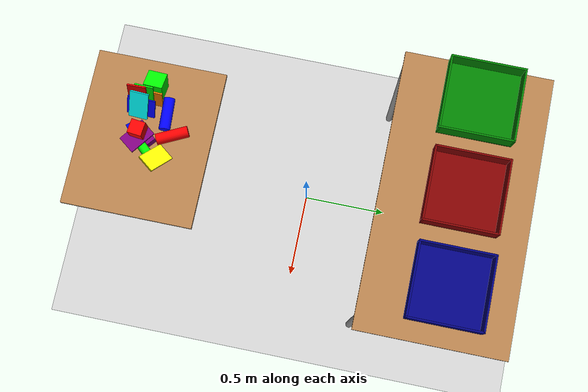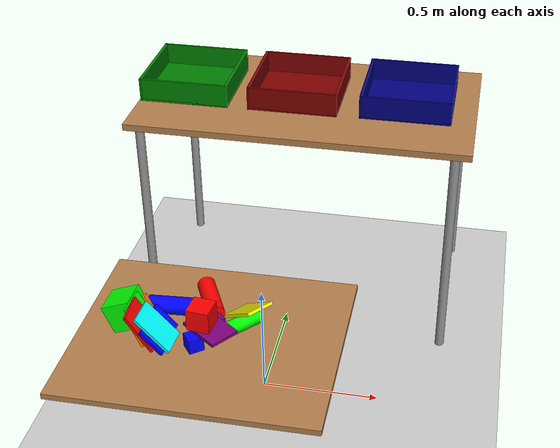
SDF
<sdf version="1.7">
 <world name="default">
  <light name="sun" type="directional">
   <pose>0 0 10 0 -0 0</pose>
   <diffuse>0.8 0.8 0.8 1</diffuse>
   <specular>0.2 0.2 0.2 1</specular>
   <attenuation>
    <range>1000</range>
    <constant>0.9</constant>
    <linear>0.01</linear>
    <quadratic>0.001</quadratic>
   </attenuation>
   <direction>-0.5 0.1 -0.9</direction>
   <spot><inner_angle>0</inner_angle><outer_angle>0</outer_angle><falloff>0</falloff></spot>
  </light>
  <model name="ground_plane">
   <static>1</static>
   <link name="link">
    <collision name="collision">
     <geometry><plane><normal>0 0 1</normal><size>100 100</size></plane></geometry>
     <surface><friction><ode><mu>100</mu><mu2>50</mu2></ode></friction></surface>
    </collision>
    <visual name="visual">
     <cast_shadows>0</cast_shadows>
     <geometry><plane><normal>0 0 1</normal><size>100 100</size></plane></geometry>
     <material>
      <script><uri>file://media/materials/scripts/gazebo.material</uri><name>Gazebo/Grey</name></script>
     </material>
    </visual>
   </link>
  </model>
  <gravity>0 0 -9.8</gravity>
  <magnetic_field>6e-06 2.3e-05 -4.2e-05</magnetic_field>
  <atmosphere type="adiabatic"/>
  <physics type="ode">
   <max_step_size>0.001</max_step_size>
   <real_time_factor>1</real_time_factor>
   <real_time_update_rate>1000</real_time_update_rate>
  </physics>
  <scene><ambient>0.4 0.4 0.4 1</ambient><background>0.7 0.7 0.7 1</background><shadows>1</shadows></scene>
  <audio><device>default</device></audio>
  <spherical_coordinates>
   <surface_model>EARTH_WGS84</surface_model>
   <latitude_deg>0</latitude_deg>
   <longitude_deg>0</longitude_deg>
   <elevation>0</elevation>
   <heading_deg>0</heading_deg>
  </spherical_coordinates>
  <model name="table">
   <static>1</static>
   <link name="link">
    <collision name="surface">
     <pose>0 0 1 0 -0 0</pose>
     <geometry><box><size>1.5 0.8 0.03</size></box></geometry>
     <surface>
      <friction><ode><mu>10</mu><mu2>5</mu2></ode></friction>
      <contact><ode><soft_cfm>0.0001</soft_cfm><soft_erp>0.4</soft_erp><kp>1e+06</kp><kd>10</kd></ode></contact>
     </surface>
    </collision>
    <visual name="visual1">
     <pose>0 0 1 0 -0 0</pose>
     <geometry><box><size>1.5 0.8 0.03</size></box></geometry>
     <material>
      <script><uri>file://media/materials/scripts/gazebo.material</uri><name>Gazebo/Wood</name></script>
     </material>
    </visual>
    <collision name="front_left_leg">
     <pose>0.68 0.38 0.5 0 -0 0</pose>
     <geometry><cylinder><radius>0.02</radius><length>1</length></cylinder></geometry>
    </collision>
    <visual name="front_left_leg">
     <pose>0.68 0.38 0.5 0 -0 0</pose>
     <geometry><cylinder><radius>0.02</radius><length>1</length></cylinder></geometry>
     <material>
      <script><uri>file://media/materials/scripts/gazebo.material</uri><name>Gazebo/Grey</name></script>
     </material>
    </visual>
    <collision name="front_right_leg">
     <pose>0.68 -0.38 0.5 0 -0 0</pose>
     <geometry><cylinder><radius>0.02</radius><length>1</length></cylinder></geometry>
    </collision>
    <visual name="front_right_leg">
     <pose>0.68 -0.38 0.5 0 -0 0</pose>
     <geometry><cylinder><radius>0.02</radius><length>1</length></cylinder></geometry>
     <material>
      <script><uri>file://media/materials/scripts/gazebo.material</uri><name>Gazebo/Grey</name></script>
     </material>
    </visual>
    <collision name="back_right_leg">
     <pose>-0.68 -0.38 0.5 0 -0 0</pose>
     <geometry><cylinder><radius>0.02</radius><length>1</length></cylinder></geometry>
    </collision>
    <visual name="back_right_leg">
     <pose>-0.68 -0.38 0.5 0 -0 0</pose>
     <geometry><cylinder><radius>0.02</radius><length>1</length></cylinder></geometry>
     <material>
      <script><uri>file://media/materials/scripts/gazebo.material</uri><name>Gazebo/Grey</name></script>
     </material>
    </visual>
    <collision name="back_left_leg">
     <pose>-0.68 0.38 0.5 0 -0 0</pose>
     <geometry><cylinder><radius>0.02</radius><length>1</length></cylinder></geometry>
    </collision>
    <visual name="back_left_leg">
     <pose>-0.68 0.38 0.5 0 -0 0</pose>
     <geometry><cylinder><radius>0.02</radius><length>1</length></cylinder></geometry>
     <material>
      <script><uri>file://media/materials/scripts/gazebo.material</uri><name>Gazebo/Grey</name></script>
     </material>
    </visual>
    <inertial>
     <inertia><ixx>1</ixx><ixy>0</ixy><ixz>0</ixz><iyy>1</iyy><iyz>0</iyz><izz>1</izz></inertia>
     <mass>50</mass>
    </inertial>
   </link>
   <pose>0.056083 0.801191 -1.2e-05 0 -0 2.5e-05</pose>
  </model>
  <plugin name="gazebo_link_attacher" filename="libgazebo_link_attacher.so"/>
  <plugin name="gazebo_ros_state" filename="libgazebo_ros_state.so">
   <namespace>/gazebo</namespace>
   <update_rate>100</update_rate>
  </plugin>
  <model name="cube_b">
   <link name="link_2">
    <inertial>
     <mass>2</mass>
     <inertia>
      <ixx>0.00083333</ixx>
      <ixy>0</ixy>
      <ixz>0</ixz>
      <iyy>0.00083333</iyy>
      <iyz>0</iyz>
      <izz>0.00083333</izz>
     </inertia>
    </inertial>
    <visual name="visual">
     <geometry><box><size>0.05 0.05 0.05</size></box></geometry>
     <material>
      <lighting>1</lighting>
      <script><uri>file://media/materials/scripts/gazebo.material</uri><name>Gazebo/Grey</name></script>
      <ambient>0 0 1 1</ambient>
      <diffuse>0 0 1 1</diffuse>
      <specular>0 0 0 1</specular>
      <emissive>0 0 0 1</emissive>
      <shader type="vertex"><normal_map>__default__</normal_map></shader>
     </material>
    </visual>
    <collision name="collision">
     <geometry><box><size>0.05 0.05 0.05</size></box></geometry>
     <surface>
      <friction>
       <ode><mu>0.8</mu><mu2>0.8</mu2><fdir1>0 0 0</fdir1><slip1>0</slip1><slip2>0</slip2></ode>
       <torsional>
        <coefficient>1</coefficient>
        <patch_radius>0</patch_radius>
        <surface_radius>0</surface_radius>
        <use_patch_radius>1</use_patch_radius>
        <ode><slip>0</slip></ode>
       </torsional>
      </friction>
      <bounce><restitution_coefficient>0</restitution_coefficient><threshold>1e+06</threshold></bounce>
      <contact>
       <collide_without_contact>0</collide_without_contact>
       <collide_without_contact_bitmask>1</collide_without_contact_bitmask>
       <collide_bitmask>1</collide_bitmask>
       <ode>
        <soft_cfm>0.0001</soft_cfm>
        <soft_erp>0.4</soft_erp>
        <kp>1e+06</kp>
        <kd>10</kd>
        <max_vel>0.01</max_vel>
        <min_depth>0</min_depth>
       </ode>
      </contact>
     </surface>
    </collision>
   </link>
   <static>0</static>
   <allow_auto_disable>0</allow_auto_disable>
   <pose>0.00929 -0.92489 1.01053 0.001646 0.00382 -2.47516</pose>
  </model>
  <model name="cube_g">
   <link name="link_2">
    <inertial>
     <mass>2</mass>
     <inertia>
      <ixx>0.00333333</ixx>
      <iyy>0.00333333</iyy>
      <izz>0.00333333</izz>
      <ixy>0</ixy>
      <ixz>0</ixz>
      <iyz>0</iyz>
     </inertia>
    </inertial>
    <visual name="visual">
     <geometry><box><size>0.1 0.1 0.1</size></box></geometry>
     <material>
      <lighting>1</lighting>
      <script><uri>file://media/materials/scripts/gazebo.material</uri><name>Gazebo/Grey</name></script>
      <ambient>0 1 0 1</ambient>
      <diffuse>0 1 0 1</diffuse>
      <specular>0 0 0 1</specular>
      <emissive>0 0 0 1</emissive>
      <shader type="vertex"><normal_map>__default__</normal_map></shader>
     </material>
    </visual>
    <collision name="collision">
     <geometry><box><size>0.1 0.1 0.1</size></box></geometry>
     <surface>
      <friction>
       <ode><mu>0.8</mu><mu2>0.8</mu2><fdir1>0 0 0</fdir1><slip1>0</slip1><slip2>0</slip2></ode>
       <torsional>
        <coefficient>1</coefficient>
        <patch_radius>0</patch_radius>
        <surface_radius>0</surface_radius>
        <use_patch_radius>1</use_patch_radius>
        <ode><slip>0</slip></ode>
       </torsional>
      </friction>
      <bounce><restitution_coefficient>0</restitution_coefficient><threshold>1e+06</threshold></bounce>
      <contact>
       <collide_without_contact>0</collide_without_contact>
       <collide_without_contact_bitmask>1</collide_without_contact_bitmask>
       <collide_bitmask>1</collide_bitmask>
       <ode>
        <soft_cfm>0.0001</soft_cfm>
        <soft_erp>0.4</soft_erp>
        <kp>1e+06</kp>
        <kd>10</kd>
        <max_vel>0.01</max_vel>
        <min_depth>0</min_depth>
       </ode>
      </contact>
     </surface>
    </collision>
   </link>
   <static>0</static>
   <allow_auto_disable>0</allow_auto_disable>
   <pose>-0.231826 -0.85174 1.04954 1.95599 0.002577 -1.60221</pose>
  </model>
  <model name="cube_r">
   <link name="link_2">
    <inertial>
     <mass>2</mass>
     <inertia>
      <ixx>0.001875</ixx>
      <ixy>0</ixy>
      <ixz>0</ixz>
      <iyy>0.001875</iyy>
      <iyz>0</iyz>
      <izz>0.001875</izz>
     </inertia>
    </inertial>
    <visual name="visual">
     <geometry><box><size>0.075 0.075 0.075</size></box></geometry>
     <material>
      <lighting>1</lighting>
      <script><uri>file://media/materials/scripts/gazebo.material</uri><name>Gazebo/Grey</name></script>
      <ambient>1 0 0 1</ambient>
      <diffuse>1 0 0 1</diffuse>
      <specular>0 0 0 1</specular>
      <emissive>0 0 0 1</emissive>
      <shader type="vertex"><normal_map>__default__</normal_map></shader>
     </material>
    </visual>
    <collision name="collision">
     <geometry><box><size>0.075 0.075 0.075</size></box></geometry>
     <surface>
      <friction>
       <ode><mu>0.8</mu><mu2>0.8</mu2><fdir1>0 0 0</fdir1><slip1>0</slip1><slip2>0</slip2></ode>
       <torsional>
        <coefficient>1</coefficient>
        <patch_radius>0</patch_radius>
        <surface_radius>0</surface_radius>
        <use_patch_radius>1</use_patch_radius>
        <ode><slip>0</slip></ode>
       </torsional>
      </friction>
      <bounce><restitution_coefficient>0</restitution_coefficient><threshold>1e+06</threshold></bounce>
      <contact>
       <collide_without_contact>0</collide_without_contact>
       <collide_without_contact_bitmask>1</collide_without_contact_bitmask>
       <collide_bitmask>1</collide_bitmask>
       <ode>
        <soft_cfm>0.0001</soft_cfm>
        <soft_erp>0.4</soft_erp>
        <kp>1e+06</kp>
        <kd>10</kd>
        <max_vel>0.01</max_vel>
        <min_depth>0</min_depth>
       </ode>
      </contact>
     </surface>
    </collision>
   </link>
   <static>0</static>
   <allow_auto_disable>0</allow_auto_disable>
   <pose>0.026694 -0.881292 1.08313 0.001745 -0.00395 -0.111271</pose>
  </model>
  <model name="cylinder_r">
   <link name="link_0">
    <inertial>
     <mass>0.2</mass>
     <inertia>
      <ixx>0.0005267</ixx>
      <ixy>0</ixy>
      <ixz>0</ixz>
      <iyy>0.0005267</iyy>
      <iyz>0</iyz>
      <izz>9e-05</izz>
     </inertia>
    </inertial>
    <visual name="visual">
     <geometry><cylinder><radius>0.03</radius><length>0.17</length></cylinder></geometry>
     <material>
      <lighting>1</lighting>
      <script><uri>file://media/materials/scripts/gazebo.material</uri><name>Gazebo/Grey</name></script>
      <ambient>1 0 0 1</ambient>
      <diffuse>1 0 0 1</diffuse>
      <specular>0 0 0 1</specular>
      <emissive>0 0 0 1</emissive>
      <shader type="vertex"><normal_map>__default__</normal_map></shader>
     </material>
    </visual>
    <collision name="collision">
     <geometry><cylinder><radius>0.03</radius><length>0.17</length></cylinder></geometry>
     <surface>
      <friction>
       <ode><mu>0.5</mu><mu2>0.5</mu2><fdir1>0 0 0</fdir1><slip1>0</slip1><slip2>0</slip2></ode>
       <torsional>
        <coefficient>1</coefficient>
        <patch_radius>0</patch_radius>
        <surface_radius>0</surface_radius>
        <use_patch_radius>1</use_patch_radius>
        <ode><slip>0</slip></ode>
       </torsional>
      </friction>
      <bounce><restitution_coefficient>0</restitution_coefficient><threshold>1e+06</threshold></bounce>
      <contact>
       <collide_without_contact>0</collide_without_contact>
       <collide_without_contact_bitmask>1</collide_without_contact_bitmask>
       <collide_bitmask>1</collide_bitmask>
       <ode>
        <soft_cfm>0.0001</soft_cfm>
        <soft_erp>0.4</soft_erp>
        <kp>1e+06</kp>
        <kd>10</kd>
        <max_vel>0.01</max_vel>
        <min_depth>0</min_depth>
       </ode>
      </contact>
     </surface>
    </collision>
   </link>
   <static>0</static>
   <allow_auto_disable>0</allow_auto_disable>
   <pose>0.007788 -0.712459 1.01657 -1.56007 0.290508 -2.67994</pose>
  </model>
  <model name="cylinder_b">
   <link name="link_0">
    <inertial>
     <mass>0.2</mass>
     <inertia>
      <ixx>0.0005267</ixx>
      <ixy>0</ixy>
      <ixz>0</ixz>
      <iyy>0.0005267</iyy>
      <iyz>0</iyz>
      <izz>9e-05</izz>
     </inertia>
    </inertial>
    <visual name="visual">
     <geometry><cylinder><radius>0.03</radius><length>0.17</length></cylinder></geometry>
     <material>
      <lighting>1</lighting>
      <ambient>0 0 1 1</ambient>
      <diffuse>0 0 1 1</diffuse>
      <specular>0.1 0.1 0.1 1</specular>
      <emissive>0 0 0 1</emissive>
      <shader type="vertex"><normal_map>__default__</normal_map></shader>
     </material>
    </visual>
    <collision name="collision">
     <geometry><cylinder><radius>0.03</radius><length>0.17</length></cylinder></geometry>
     <surface>
      <friction>
       <ode><mu>0.4</mu><mu2>0.4</mu2><fdir1>0 0 0</fdir1><slip1>0</slip1><slip2>0</slip2></ode>
       <torsional>
        <coefficient>1</coefficient>
        <patch_radius>0</patch_radius>
        <surface_radius>0</surface_radius>
        <use_patch_radius>1</use_patch_radius>
        <ode><slip>0</slip></ode>
       </torsional>
      </friction>
      <bounce><restitution_coefficient>0</restitution_coefficient><threshold>1e+06</threshold></bounce>
      <contact>
       <collide_without_contact>0</collide_without_contact>
       <collide_without_contact_bitmask>1</collide_without_contact_bitmask>
       <collide_bitmask>1</collide_bitmask>
       <ode>
        <soft_cfm>0.0001</soft_cfm>
        <soft_erp>0.4</soft_erp>
        <kp>1e+06</kp>
        <kd>10</kd>
        <max_vel>0.01</max_vel>
        <min_depth>0</min_depth>
       </ode>
      </contact>
     </surface>
    </collision>
   </link>
   <static>0</static>
   <allow_auto_disable>0</allow_auto_disable>
   <pose>-0.099262 -0.766677 1.01527 -1.57529 -0.349819 1.63632</pose>
  </model>
  <model name="cylinder_g">
   <link name="link_0">
    <inertial>
     <mass>0.2</mass>
     <inertia>
      <ixx>0.0005129</ixx>
      <ixy>0</ixy>
      <ixz>0</ixz>
      <iyy>0.0005129</iyy>
      <iyz>0</iyz>
      <izz>6.25e-05</izz>
     </inertia>
    </inertial>
    <visual name="visual">
     <geometry><cylinder><radius>0.025</radius><length>0.17</length></cylinder></geometry>
     <material>
      <lighting>1</lighting>
      <ambient>0 1 0 1</ambient>
      <diffuse>0 1 0 1</diffuse>
      <specular>0.1 0.1 0.1 1</specular>
      <emissive>0 0 0 1</emissive>
      <shader type="vertex"><normal_map>__default__</normal_map></shader>
     </material>
    </visual>
    <collision name="collision">
     <geometry><cylinder><radius>0.025</radius><length>0.17</length></cylinder></geometry>
     <surface>
      <friction>
       <ode><mu>0.5</mu><mu2>0.5</mu2><fdir1>0 0 0</fdir1><slip1>0</slip1><slip2>0</slip2></ode>
       <torsional>
        <coefficient>1</coefficient>
        <patch_radius>0</patch_radius>
        <surface_radius>0</surface_radius>
        <use_patch_radius>1</use_patch_radius>
        <ode><slip>0</slip></ode>
       </torsional>
      </friction>
      <bounce><restitution_coefficient>0</restitution_coefficient><threshold>1e+06</threshold></bounce>
      <contact>
       <collide_without_contact>0</collide_without_contact>
       <collide_without_contact_bitmask>1</collide_without_contact_bitmask>
       <collide_bitmask>1</collide_bitmask>
       <ode>
        <soft_cfm>0.0001</soft_cfm>
        <soft_erp>0.4</soft_erp>
        <kp>1e+06</kp>
        <kd>10</kd>
        <max_vel>0.01</max_vel>
        <min_depth>0</min_depth>
       </ode>
      </contact>
     </surface>
    </collision>
   </link>
   <static>0</static>
   <allow_auto_disable>0</allow_auto_disable>
   <pose>0.121807 -0.825418 1.0111 -1.55917 -1.26198 -0.737832</pose>
  </model>
  <model name="cuboid_r">
   <link name="link">
    <inertial>
     <mass>2</mass>
     <inertia>
      <ixx>0.001683</ixx>
      <iyy>0.003767</iyy>
      <izz>0.005417</izz>
      <ixy>0</ixy>
      <ixz>0</ixz>
      <iyz>0</iyz>
     </inertia>
    </inertial>
    <visual name="visual">
     <geometry><box><size>0.15 0.1 0.01</size></box></geometry>
     <material><ambient>1 0 0 1</ambient><diffuse>1 0 0 1</diffuse><specular>0.1 0.1 0.1 1</specular></material>
    </visual>
    <collision name="collision">
     <geometry><box><size>0.15 0.1 0.01</size></box></geometry>
     <surface>
      <friction>
       <ode><mu>0.6</mu><mu2>0.6</mu2><fdir1>0 0 0</fdir1><slip1>0</slip1><slip2>0</slip2></ode>
       <torsional>
        <coefficient>1</coefficient>
        <patch_radius>0</patch_radius>
        <surface_radius>0</surface_radius>
        <use_patch_radius>1</use_patch_radius>
        <ode><slip>0</slip></ode>
       </torsional>
      </friction>
      <bounce><restitution_coefficient>0</restitution_coefficient><threshold>1e+06</threshold></bounce>
      <contact>
       <collide_without_contact>0</collide_without_contact>
       <collide_without_contact_bitmask>1</collide_without_contact_bitmask>
       <collide_bitmask>1</collide_bitmask>
       <ode>
        <soft_cfm>0.0001</soft_cfm>
        <soft_erp>0.4</soft_erp>
        <kp>1e+06</kp>
        <kd>10</kd>
        <max_vel>0.01</max_vel>
        <min_depth>0</min_depth>
       </ode>
      </contact>
     </surface>
    </collision>
   </link>
   <static>0</static>
   <allow_auto_disable>0</allow_auto_disable>
   <pose>-0.151797 -0.927421 1.05628 -2.99217 1.05595 0.139549</pose>
  </model>
  <model name="cuboid_g">
   <link name="link">
    <inertial>
     <mass>2</mass>
     <inertia>
      <ixx>0.001683</ixx>
      <iyy>0.003767</iyy>
      <izz>0.005417</izz>
      <ixy>0</ixy>
      <ixz>0</ixz>
      <iyz>0</iyz>
     </inertia>
    </inertial>
    <visual name="visual">
     <geometry><box><size>0.15 0.1 0.01</size></box></geometry>
     <material><ambient>0 1 0 1</ambient><diffuse>0 1 0 1</diffuse><specular>0.1 0.1 0.1 1</specular></material>
    </visual>
    <collision name="collision">
     <geometry><box><size>0.15 0.1 0.01</size></box></geometry>
     <surface>
      <friction>
       <ode><mu>0.6</mu><mu2>0.6</mu2><fdir1>0 0 0</fdir1><slip1>0</slip1><slip2>0</slip2></ode>
       <torsional>
        <coefficient>1</coefficient>
        <patch_radius>0</patch_radius>
        <surface_radius>0</surface_radius>
        <use_patch_radius>1</use_patch_radius>
        <ode><slip>0</slip></ode>
       </torsional>
      </friction>
      <bounce><restitution_coefficient>0</restitution_coefficient><threshold>1e+06</threshold></bounce>
      <contact>
       <collide_without_contact>0</collide_without_contact>
       <collide_without_contact_bitmask>1</collide_without_contact_bitmask>
       <collide_bitmask>1</collide_bitmask>
       <ode>
        <soft_cfm>0.0001</soft_cfm>
        <soft_erp>0.4</soft_erp>
        <kp>1e+06</kp>
        <kd>10</kd>
        <max_vel>0.01</max_vel>
        <min_depth>0</min_depth>
       </ode>
      </contact>
     </surface>
    </collision>
   </link>
   <static>0</static>
   <allow_auto_disable>0</allow_auto_disable>
   <pose>-0.160548 -0.895572 1.05329 -3.12607 1.06276 -0.015265</pose>
  </model>
  <model name="cuboid_b">
   <link name="link">
    <inertial>
     <mass>2</mass>
     <inertia>
      <ixx>0.001683</ixx>
      <iyy>0.003767</iyy>
      <izz>0.005417</izz>
      <ixy>0</ixy>
      <ixz>0</ixz>
      <iyz>0</iyz>
     </inertia>
    </inertial>
    <visual name="visual">
     <geometry><box><size>0.15 0.1 0.01</size></box></geometry>
     <material><ambient>0 0 1 1</ambient><diffuse>0 0 1 1</diffuse><specular>0.1 0.1 0.1 1</specular></material>
    </visual>
    <collision name="collision">
     <geometry><box><size>0.15 0.1 0.01</size></box></geometry>
     <surface>
      <friction>
       <ode><mu>0.6</mu><mu2>0.6</mu2><fdir1>0 0 0</fdir1><slip1>0</slip1><slip2>0</slip2></ode>
       <torsional>
        <coefficient>1</coefficient>
        <patch_radius>0</patch_radius>
        <surface_radius>0</surface_radius>
        <use_patch_radius>1</use_patch_radius>
        <ode><slip>0</slip></ode>
       </torsional>
      </friction>
      <bounce><restitution_coefficient>0</restitution_coefficient><threshold>1e+06</threshold></bounce>
      <contact>
       <collide_without_contact>0</collide_without_contact>
       <collide_without_contact_bitmask>1</collide_without_contact_bitmask>
       <collide_bitmask>1</collide_bitmask>
       <ode>
        <soft_cfm>0.0001</soft_cfm>
        <soft_erp>0.4</soft_erp>
        <kp>1e+06</kp>
        <kd>10</kd>
        <max_vel>0.01</max_vel>
        <min_depth>0</min_depth>
       </ode>
      </contact>
     </surface>
    </collision>
   </link>
   <static>0</static>
   <allow_auto_disable>0</allow_auto_disable>
   <pose>-0.110104 -0.906146 1.0257 2.30314 0.001314 -1.6016</pose>
  </model>
  <model name="cuboid_purple">
   <link name="link">
    <inertial>
     <mass>2</mass>
     <inertia>
      <ixx>0.001683</ixx>
      <iyy>0.003767</iyy>
      <izz>0.005417</izz>
      <ixy>0</ixy>
      <ixz>0</ixz>
      <iyz>0</iyz>
     </inertia>
    </inertial>
    <visual name="visual">
     <geometry><box><size>0.15 0.1 0.01</size></box></geometry>
     <material>
      <ambient>0.5 0 0.5 1</ambient>
      <diffuse>0.5 0 0.5 1</diffuse>
      <specular>0.1 0.1 0.1 1</specular>
     </material>
    </visual>
    <collision name="collision">
     <geometry><box><size>0.15 0.1 0.01</size></box></geometry>
     <surface>
      <friction>
       <ode><mu>0.6</mu><mu2>0.6</mu2><fdir1>0 0 0</fdir1><slip1>0</slip1><slip2>0</slip2></ode>
       <torsional>
        <coefficient>1</coefficient>
        <patch_radius>0</patch_radius>
        <surface_radius>0</surface_radius>
        <use_patch_radius>1</use_patch_radius>
        <ode><slip>0</slip></ode>
       </torsional>
      </friction>
      <bounce><restitution_coefficient>0</restitution_coefficient><threshold>1e+06</threshold></bounce>
      <contact>
       <collide_without_contact>0</collide_without_contact>
       <collide_without_contact_bitmask>1</collide_without_contact_bitmask>
       <collide_bitmask>1</collide_bitmask>
       <ode>
        <soft_cfm>0.0001</soft_cfm>
        <soft_erp>0.4</soft_erp>
        <kp>1e+06</kp>
        <kd>10</kd>
        <max_vel>0.01</max_vel>
        <min_depth>0</min_depth>
       </ode>
      </contact>
     </surface>
    </collision>
   </link>
   <static>0</static>
   <allow_auto_disable>0</allow_auto_disable>
   <pose>0.05383 -0.886104 1.04075 0.003499 -0.002549 -0.647532</pose>
  </model>
  <model name="cuboid_orange">
   <link name="link">
    <inertial>
     <mass>2</mass>
     <inertia>
      <ixx>0.001683</ixx>
      <iyy>0.003767</iyy>
      <izz>0.005417</izz>
      <ixy>0</ixy>
      <ixz>0</ixz>
      <iyz>0</iyz>
     </inertia>
    </inertial>
    <visual name="visual">
     <geometry><box><size>0.15 0.1 0.01</size></box></geometry>
     <material>
      <ambient>1 0.5 0 1</ambient>
      <diffuse>1 0.5 0 1</diffuse>
      <specular>0.1 0.1 0.1 1</specular>
     </material>
    </visual>
    <collision name="collision">
     <geometry><box><size>0.15 0.1 0.01</size></box></geometry>
     <surface>
      <friction>
       <ode><mu>0.6</mu><mu2>0.6</mu2><fdir1>0 0 0</fdir1><slip1>0</slip1><slip2>0</slip2></ode>
       <torsional>
        <coefficient>1</coefficient>
        <patch_radius>0</patch_radius>
        <surface_radius>0</surface_radius>
        <use_patch_radius>1</use_patch_radius>
        <ode><slip>0</slip></ode>
       </torsional>
      </friction>
      <bounce><restitution_coefficient>0</restitution_coefficient><threshold>1e+06</threshold></bounce>
      <contact>
       <collide_without_contact>0</collide_without_contact>
       <collide_without_contact_bitmask>1</collide_without_contact_bitmask>
       <collide_bitmask>1</collide_bitmask>
       <ode>
        <soft_cfm>0.0001</soft_cfm>
        <soft_erp>0.4</soft_erp>
        <kp>1e+06</kp>
        <kd>10</kd>
        <max_vel>0.01</max_vel>
        <min_depth>0</min_depth>
       </ode>
      </contact>
     </surface>
    </collision>
   </link>
   <static>0</static>
   <allow_auto_disable>0</allow_auto_disable>
   <pose>-0.166759 -0.877309 1.03308 1.95902 0.001133 -1.60329</pose>
  </model>
  <model name="cuboid_yellow">
   <link name="link">
    <inertial>
     <mass>2</mass>
     <inertia>
      <ixx>0.001683</ixx>
      <iyy>0.003767</iyy>
      <izz>0.005417</izz>
      <ixy>0</ixy>
      <ixz>0</ixz>
      <iyz>0</iyz>
     </inertia>
    </inertial>
    <visual name="visual">
     <geometry><box><size>0.15 0.1 0.01</size></box></geometry>
     <material><ambient>1 1 0 1</ambient><diffuse>1 1 0 1</diffuse><specular>0.1 0.1 0.1 1</specular></material>
    </visual>
    <collision name="collision">
     <geometry><box><size>0.15 0.1 0.01</size></box></geometry>
     <surface>
      <friction>
       <ode><mu>0.6</mu><mu2>0.6</mu2><fdir1>0 0 0</fdir1><slip1>0</slip1><slip2>0</slip2></ode>
       <torsional>
        <coefficient>1</coefficient>
        <patch_radius>0</patch_radius>
        <surface_radius>0</surface_radius>
        <use_patch_radius>1</use_patch_radius>
        <ode><slip>0</slip></ode>
       </torsional>
      </friction>
      <bounce><restitution_coefficient>0</restitution_coefficient><threshold>1e+06</threshold></bounce>
      <contact>
       <collide_without_contact>0</collide_without_contact>
       <collide_without_contact_bitmask>1</collide_without_contact_bitmask>
       <collide_bitmask>1</collide_bitmask>
       <ode>
        <soft_cfm>0.0001</soft_cfm>
        <soft_erp>0.4</soft_erp>
        <kp>1e+06</kp>
        <kd>10</kd>
        <max_vel>0.01</max_vel>
        <min_depth>0</min_depth>
       </ode>
      </contact>
     </surface>
    </collision>
   </link>
   <static>0</static>
   <allow_auto_disable>0</allow_auto_disable>
   <pose>0.145259 -0.766305 1.03298 3.08838 -0.566318 -0.622581</pose>
  </model>
  <model name="cuboid_cyan">
   <link name="link">
    <inertial>
     <mass>2</mass>
     <inertia>
      <ixx>0.001683</ixx>
      <iyy>0.003767</iyy>
      <izz>0.005417</izz>
      <ixy>0</ixy>
      <ixz>0</ixz>
      <iyz>0</iyz>
     </inertia>
    </inertial>
    <visual name="visual">
     <geometry><box><size>0.15 0.1 0.01</size></box></geometry>
     <material><ambient>0 1 1 1</ambient><diffuse>0 1 1 1</diffuse><specular>0.1 0.1 0.1 1</specular></material>
    </visual>
    <collision name="collision">
     <geometry><box><size>0.15 0.1 0.01</size></box></geometry>
     <surface>
      <friction>
       <ode><mu>0.6</mu><mu2>0.6</mu2><fdir1>0 0 0</fdir1><slip1>0</slip1><slip2>0</slip2></ode>
       <torsional>
        <coefficient>1</coefficient>
        <patch_radius>0</patch_radius>
        <surface_radius>0</surface_radius>
        <use_patch_radius>1</use_patch_radius>
        <ode><slip>0</slip></ode>
       </torsional>
      </friction>
      <bounce><restitution_coefficient>0</restitution_coefficient><threshold>1e+06</threshold></bounce>
      <contact>
       <collide_without_contact>0</collide_without_contact>
       <collide_without_contact_bitmask>1</collide_without_contact_bitmask>
       <collide_bitmask>1</collide_bitmask>
       <ode>
        <soft_cfm>0.0001</soft_cfm>
        <soft_erp>0.4</soft_erp>
        <kp>1e+06</kp>
        <kd>10</kd>
        <max_vel>0.01</max_vel>
        <min_depth>0</min_depth>
       </ode>
      </contact>
     </surface>
    </collision>
   </link>
   <static>0</static>
   <allow_auto_disable>0</allow_auto_disable>
   <pose>-0.111507 -0.916774 1.04345 3.13338 0.812361 -0.047442</pose>
  </model>
  <model name="workspace">
   <link name="link">
    <inertial>
     <mass>100</mass>
     <inertia><ixx>6.02417</ixx><ixy>0</ixy><ixz>0</ixz><iyy>4.08667</iyy><iyz>0</iyz><izz>10.1042</izz></inertia>
    </inertial>
    <visual name="visual">
     <geometry><box><size>0.7 0.85 0.02</size></box></geometry>
     <material>
      <script><name>Gazebo/Wood</name><uri>file://media/materials/scripts/gazebo.material</uri></script>
      <shader type="pixel"/>
     </material>
    </visual>
    <collision name="collision">
     <geometry><box><size>0.7 0.85 0.02</size></box></geometry>
     <surface>
      <friction>
       <ode><mu>100</mu><mu2>50</mu2><fdir1>0 0 0</fdir1><slip1>0</slip1><slip2>0</slip2></ode>
       <torsional>
        <coefficient>1</coefficient>
        <patch_radius>0</patch_radius>
        <surface_radius>0</surface_radius>
        <use_patch_radius>1</use_patch_radius>
        <ode><slip>0</slip></ode>
       </torsional>
      </friction>
      <bounce><restitution_coefficient>0</restitution_coefficient><threshold>1e+06</threshold></bounce>
      <contact>
       <collide_without_contact>0</collide_without_contact>
       <collide_without_contact_bitmask>1</collide_without_contact_bitmask>
       <collide_bitmask>1</collide_bitmask>
       <ode>
        <soft_cfm>0.0001</soft_cfm>
        <soft_erp>0.2</soft_erp>
        <kp>1e+13</kp>
        <kd>10</kd>
        <max_vel>0.01</max_vel>
        <min_depth>0</min_depth>
       </ode>
       <bullet>
        <split_impulse>1</split_impulse>
        <split_impulse_penetration_threshold>-0.01</split_impulse_penetration_threshold>
        <soft_cfm>0</soft_cfm>
        <soft_erp>0.2</soft_erp>
        <kp>1e+13</kp>
        <kd>1</kd>
       </bullet>
      </contact>
     </surface>
    </collision>
   </link>
   <static>1</static>
   <pose>0.0416 -0.859914 0.975746 -0.004154 -0.001127 1.57039</pose>
  </model>
  <model name="tray_red">
   <static>1</static>
   <link name="link">
    <collision name="base_collision">
     <pose>0 0 0.01 0 -0 0</pose>
     <geometry><box><size>0.4 0.4 0.01</size></box></geometry>
     <surface><contact><ode><mu>50</mu><mu2>50</mu2></ode></contact></surface>
    </collision>
    <visual name="base_visual">
     <pose>0 0 0.01 0 -0 0</pose>
     <geometry><box><size>0.4 0.4 0.01</size></box></geometry>
     <material>
      <ambient>1 0 0 1</ambient>
      <diffuse>0.5 0 0 1</diffuse>
      <specular>0 0 0 1</specular>
      <emissive>0 0 0 1</emissive>
      <shininess>100</shininess>
     </material>
    </visual>
    <collision name="front_collision">
     <pose>0 0.195 0.06 0 -0 0</pose>
     <geometry><box><size>0.4 0.01 0.1</size></box></geometry>
    </collision>
    <visual name="front_visual">
     <pose>0 0.195 0.06 0 -0 0</pose>
     <geometry><box><size>0.4 0.01 0.1</size></box></geometry>
     <material>
      <ambient>1 0 0 1</ambient>
      <diffuse>0.5 0 0 1</diffuse>
      <specular>0 0 0 1</specular>
      <emissive>0 0 0 1</emissive>
     </material>
    </visual>
    <collision name="back_collision">
     <pose>0 -0.195 0.06 0 -0 0</pose>
     <geometry><box><size>0.4 0.01 0.1</size></box></geometry>
    </collision>
    <visual name="back_visual">
     <pose>0 -0.195 0.06 0 -0 0</pose>
     <geometry><box><size>0.4 0.01 0.1</size></box></geometry>
     <material>
      <ambient>1 0 0 1</ambient>
      <diffuse>0.5 0 0 1</diffuse>
      <specular>0 0 0 1</specular>
      <emissive>0 0 0 1</emissive>
     </material>
    </visual>
    <collision name="left_collision">
     <pose>0.195 0 0.06 0 -0 0</pose>
     <geometry><box><size>0.01 0.4 0.1</size></box></geometry>
    </collision>
    <visual name="left_visual">
     <pose>0.195 0 0.06 0 -0 0</pose>
     <geometry><box><size>0.01 0.4 0.1</size></box></geometry>
     <material>
      <ambient>1 0 0 1</ambient>
      <diffuse>0.5 0 0 1</diffuse>
      <specular>0 0 0 1</specular>
      <emissive>0 0 0 1</emissive>
     </material>
    </visual>
    <collision name="right_collision">
     <pose>-0.195 0 0.06 0 -0 0</pose>
     <geometry><box><size>0.01 0.4 0.1</size></box></geometry>
    </collision>
    <visual name="right_visual">
     <pose>-0.195 0 0.06 0 -0 0</pose>
     <geometry><box><size>0.01 0.4 0.1</size></box></geometry>
     <material>
      <ambient>1 0 0 1</ambient>
      <diffuse>0.5 0 0 1</diffuse>
      <specular>0 0 0 1</specular>
      <emissive>0 0 0 1</emissive>
     </material>
    </visual>
    <inertial>
     <inertia><ixx>1</ixx><ixy>0</ixy><ixz>0</ixz><iyy>1</iyy><iyz>0</iyz><izz>1</izz></inertia>
     <mass>1</mass>
    </inertial>
   </link>
   <pose>0.003367 0.836815 1.00999 0 -0 0</pose>
  </model>
  <model name="tray_green">
   <static>1</static>
   <link name="link">
    <collision name="base_collision">
     <pose>0 0 0.01 0 -0 0</pose>
     <geometry><box><size>0.4 0.4 0.01</size></box></geometry>
     <surface><contact><ode><mu>50</mu><mu2>50</mu2></ode></contact></surface>
    </collision>
    <visual name="base_visual">
     <pose>0 0 0.01 0 -0 0</pose>
     <geometry><box><size>0.4 0.4 0.01</size></box></geometry>
     <material><ambient>0 1 0 1</ambient><diffuse>0 0.5 0 1</diffuse></material>
    </visual>
    <collision name="front_collision">
     <pose>0 0.195 0.06 0 -0 0</pose>
     <geometry><box><size>0.4 0.01 0.1</size></box></geometry>
    </collision>
    <visual name="front_visual">
     <pose>0 0.195 0.06 0 -0 0</pose>
     <geometry><box><size>0.4 0.01 0.1</size></box></geometry>
     <material><ambient>0 1 0 1</ambient><diffuse>0 0.5 0 1</diffuse></material>
    </visual>
    <collision name="back_collision">
     <pose>0 -0.195 0.06 0 -0 0</pose>
     <geometry><box><size>0.4 0.01 0.1</size></box></geometry>
    </collision>
    <visual name="back_visual">
     <pose>0 -0.195 0.06 0 -0 0</pose>
     <geometry><box><size>0.4 0.01 0.1</size></box></geometry>
     <material><ambient>0 1 0 1</ambient><diffuse>0 0.5 0 1</diffuse></material>
    </visual>
    <collision name="left_collision">
     <pose>0.195 0 0.06 0 -0 0</pose>
     <geometry><box><size>0.01 0.4 0.1</size></box></geometry>
    </collision>
    <visual name="left_visual">
     <pose>0.195 0 0.06 0 -0 0</pose>
     <geometry><box><size>0.01 0.4 0.1</size></box></geometry>
     <material><ambient>0 1 0 1</ambient><diffuse>0 0.5 0 1</diffuse></material>
    </visual>
    <collision name="right_collision">
     <pose>-0.195 0 0.06 0 -0 0</pose>
     <geometry><box><size>0.01 0.4 0.1</size></box></geometry>
    </collision>
    <visual name="right_visual">
     <pose>-0.195 0 0.06 0 -0 0</pose>
     <geometry><box><size>0.01 0.4 0.1</size></box></geometry>
     <material><ambient>0 1 0 1</ambient><diffuse>0 0.5 0 1</diffuse></material>
    </visual>
    <inertial>
     <inertia><ixx>1</ixx><ixy>0</ixy><ixz>0</ixz><iyy>1</iyy><iyz>0</iyz><izz>1</izz></inertia>
     <mass>1</mass>
    </inertial>
   </link>
   <pose>-0.487214 0.834657 1.00999 0 -0 0</pose>
  </model>
  <model name="tray_blue">
   <static>1</static>
   <link name="link">
    <collision name="base_collision">
     <pose>0 0 0.01 0 -0 0</pose>
     <geometry><box><size>0.4 0.4 0.01</size></box></geometry>
     <surface><contact><ode><mu>50</mu><mu2>50</mu2></ode></contact></surface>
    </collision>
    <visual name="base_visual">
     <pose>0 0 0.01 0 -0 0</pose>
     <geometry><box><size>0.4 0.4 0.01</size></box></geometry>
     <material><ambient>0 0 1 1</ambient><diffuse>0 0 0.5 1</diffuse></material>
    </visual>
    <collision name="front_collision">
     <pose>0 0.195 0.06 0 -0 0</pose>
     <geometry><box><size>0.4 0.01 0.1</size></box></geometry>
    </collision>
    <visual name="front_visual">
     <pose>0 0.195 0.06 0 -0 0</pose>
     <geometry><box><size>0.4 0.01 0.1</size></box></geometry>
     <material><ambient>0 0 1 1</ambient><diffuse>0 0 0.5 1</diffuse></material>
    </visual>
    <collision name="back_collision">
     <pose>0 -0.195 0.06 0 -0 0</pose>
     <geometry><box><size>0.4 0.01 0.1</size></box></geometry>
    </collision>
    <visual name="back_visual">
     <pose>0 -0.195 0.06 0 -0 0</pose>
     <geometry><box><size>0.4 0.01 0.1</size></box></geometry>
     <material><ambient>0 0 1 1</ambient><diffuse>0 0 0.5 1</diffuse></material>
    </visual>
    <collision name="left_collision">
     <pose>0.195 0 0.06 0 -0 0</pose>
     <geometry><box><size>0.01 0.4 0.1</size></box></geometry>
    </collision>
    <visual name="left_visual">
     <pose>0.195 0 0.06 0 -0 0</pose>
     <geometry><box><size>0.01 0.4 0.1</size></box></geometry>
     <material><ambient>0 0 1 1</ambient><diffuse>0 0 0.5 1</diffuse></material>
    </visual>
    <collision name="right_collision">
     <pose>-0.195 0 0.06 0 -0 0</pose>
     <geometry><box><size>0.01 0.4 0.1</size></box></geometry>
    </collision>
    <visual name="right_visual">
     <pose>-0.195 0 0.06 0 -0 0</pose>
     <geometry><box><size>0.01 0.4 0.1</size></box></geometry>
     <material><ambient>0 0 1 1</ambient><diffuse>0 0 0.5 1</diffuse></material>
    </visual>
    <inertial>
     <inertia><ixx>1</ixx><ixy>0</ixy><ixz>0</ixz><iyy>1</iyy><iyz>0</iyz><izz>1</izz></inertia>
     <mass>1</mass>
    </inertial>
   </link>
   <pose>0.500589 0.844197 1.00999 0 -0 0</pose>
  </model>
  <model name="cube_purple">
   <link name="link_2">
    <inertial>
     <mass>2</mass>
     <inertia>
      <ixx>0.00083333</ixx>
      <ixy>0</ixy>
      <ixz>0</ixz>
      <iyy>0.00083333</iyy>
      <iyz>0</iyz>
      <izz>0.00083333</izz>
     </inertia>
    </inertial>
    <visual name="visual">
     <geometry><box><size>0.05 0.05 0.05</size></box></geometry>
     <material>
      <lighting>1</lighting>
      <script><uri>file://media/materials/scripts/gazebo.material</uri><name>Gazebo/Grey</name></script>
      <ambient>0.5 0 0.5 1</ambient>
      <diffuse>0.5 0 0.5 1</diffuse>
      <specular>0.1 0.1 0.1 1</specular>
      <emissive>0 0 0 1</emissive>
      <shader type="vertex"><normal_map>__default__</normal_map></shader>
     </material>
    </visual>
    <collision name="collision">
     <geometry><box><size>0.05 0.05 0.05</size></box></geometry>
     <surface>
      <friction>
       <ode><mu>0.8</mu><mu2>0.8</mu2><fdir1>0 0 0</fdir1><slip1>0</slip1><slip2>0</slip2></ode>
       <torsional>
        <coefficient>1</coefficient>
        <patch_radius>0</patch_radius>
        <surface_radius>0</surface_radius>
        <use_patch_radius>1</use_patch_radius>
        <ode><slip>0</slip></ode>
       </torsional>
      </friction>
      <bounce><restitution_coefficient>0</restitution_coefficient><threshold>1e+06</threshold></bounce>
      <contact>
       <collide_without_contact>0</collide_without_contact>
       <collide_without_contact_bitmask>1</collide_without_contact_bitmask>
       <collide_bitmask>1</collide_bitmask>
       <ode>
        <soft_cfm>0.0001</soft_cfm>
        <soft_erp>0.4</soft_erp>
        <kp>1e+06</kp>
        <kd>10</kd>
        <max_vel>0.01</max_vel>
        <min_depth>0</min_depth>
       </ode>
      </contact>
     </surface>
    </collision>
   </link>
   <static>0</static>
   <allow_auto_disable>0</allow_auto_disable>
   <pose>0.051236 -0.828055 1.01081 0.002449 0.003585 -2.26166</pose>
  </model>
 </world>
</sdf>
